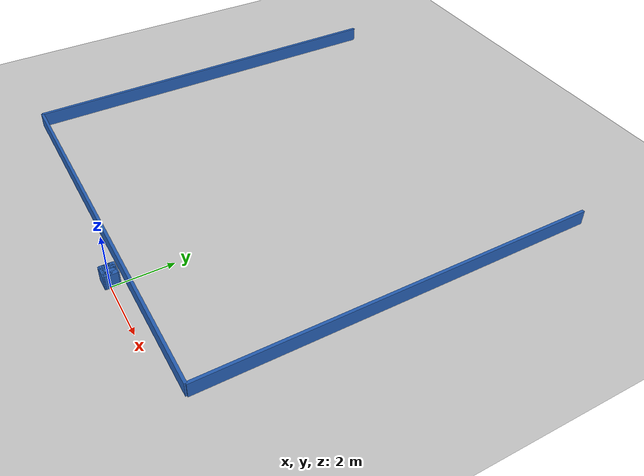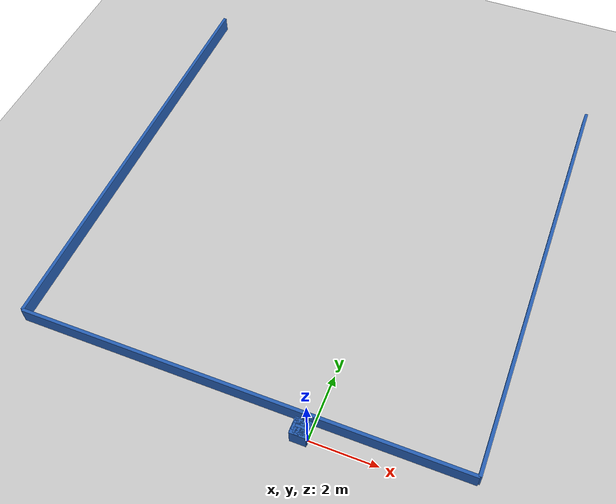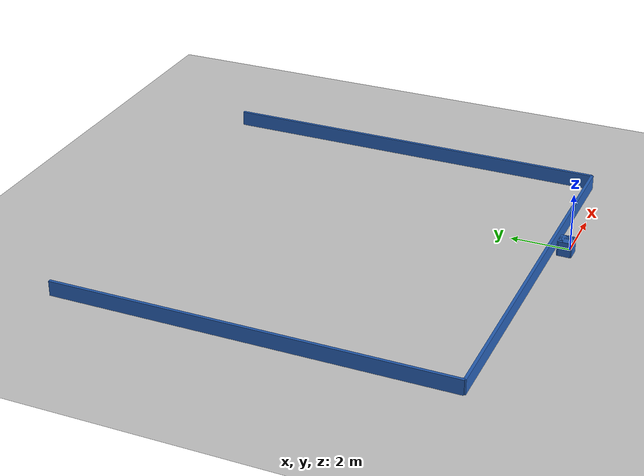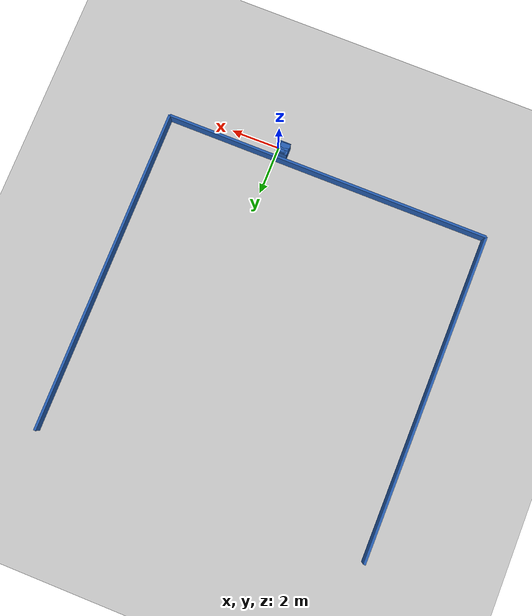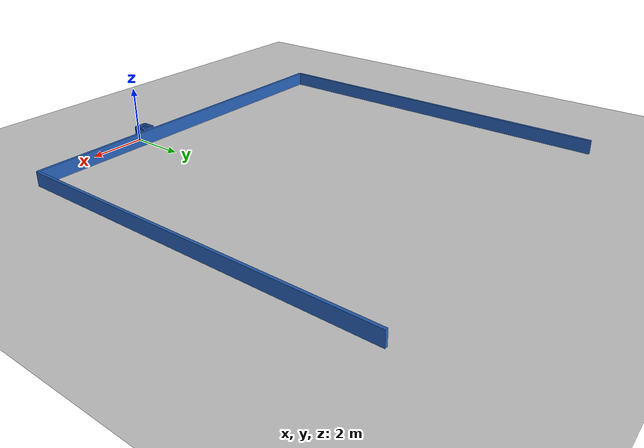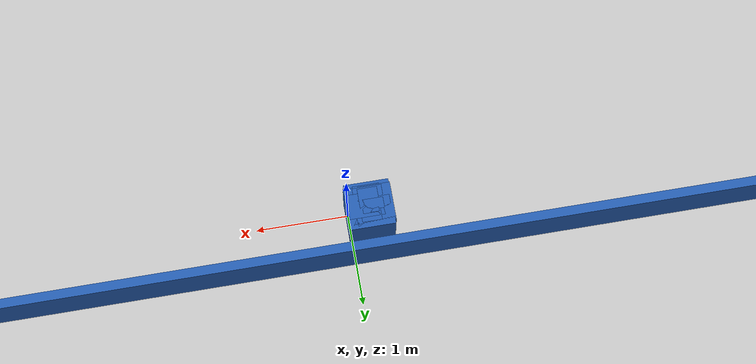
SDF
<?xml version="1.0" ?>
    <sdf version="1.5">
      <world name="default">
        <!-- A global light source -->
        <include>
          <uri>model://sun</uri>
        </include>
        <!-- A ground plane -->
        <include>
          <uri>model://ground_plane</uri>
        </include>

    <model name='libopen_space_final_T2B_67_46'>
      <static>1</static>
      <pose frame=''>-0.225000 0.075000 0.000000 0.000000 0.000000 0.000000</pose>
      <link name='link'>
        <inertial>
          <mass>1</mass>
          <inertia>
            <ixx>0.145833</ixx>
            <ixy>0</ixy>
            <ixz>0</ixz>
            <iyy>0.145833</iyy>
            <iyz>0</iyz>
            <izz>0.125</izz>
          </inertia>
        </inertial>
        <collision name='collision'>
          <geometry>
            <box>
              <size>0.16 0.19 1</size>
            </box>
          </geometry>
          <max_contacts>10</max_contacts>
          <surface>
            <contact>
              <ode/>
            </contact>
            <bounce/>
            <friction>
              <torsional>
                <ode/>
              </torsional>
              <ode/>
            </friction>
          </surface>
        </collision>
        <visual name='visual'>
          <geometry>
            <box>
              <size>0.16 0.19 1</size>
            </box>
          </geometry>
	    <material>
              <ambient>0.152000 0.379000 0.720000 1</ambient>
	      <diffuse>0.152000 0.379000 0.720000 1</diffuse>
          </material>
          <material>
            <script>
              <name>Gazebo/Grey</name>
              <uri>file://media/materials/scripts/gazebo.material</uri>
            </script>
          </material>
        </visual>
        <self_collide>0</self_collide>
        <kinematic>0</kinematic>
        <gravity>1</gravity>
      </link>
      <plugin name='libopen_space_final_T2B_67_46' filename='libopen_space_final_T2B_67_46.so'/>
    </model>

    <model name='libopen_space_final_T2B_126_41'>
      <static>1</static>
      <pose frame=''>-0.225000 0.075000 0.000000 0.000000 0.000000 0.000000</pose>
      <link name='link'>
        <inertial>
          <mass>1</mass>
          <inertia>
            <ixx>0.145833</ixx>
            <ixy>0</ixy>
            <ixz>0</ixz>
            <iyy>0.145833</iyy>
            <iyz>0</iyz>
            <izz>0.125</izz>
          </inertia>
        </inertial>
        <collision name='collision'>
          <geometry>
            <box>
              <size>0.21 0.37 1</size>
            </box>
          </geometry>
          <max_contacts>10</max_contacts>
          <surface>
            <contact>
              <ode/>
            </contact>
            <bounce/>
            <friction>
              <torsional>
                <ode/>
              </torsional>
              <ode/>
            </friction>
          </surface>
        </collision>
        <visual name='visual'>
          <geometry>
            <box>
              <size>0.21 0.37 1</size>
            </box>
          </geometry>
	    <material>
              <ambient>0.152000 0.379000 0.720000 1</ambient>
	      <diffuse>0.152000 0.379000 0.720000 1</diffuse>
          </material>
          <material>
            <script>
              <name>Gazebo/Grey</name>
              <uri>file://media/materials/scripts/gazebo.material</uri>
            </script>
          </material>
        </visual>
        <self_collide>0</self_collide>
        <kinematic>0</kinematic>
        <gravity>1</gravity>
      </link>
      <plugin name='libopen_space_final_T2B_126_41' filename='libopen_space_final_T2B_126_41.so'/>
    </model>

    <model name='libopen_space_final_T2B_113_82'>
      <static>1</static>
      <pose frame=''>-0.225000 0.075000 0.000000 0.000000 0.000000 0.000000</pose>
      <link name='link'>
        <inertial>
          <mass>1</mass>
          <inertia>
            <ixx>0.145833</ixx>
            <ixy>0</ixy>
            <ixz>0</ixz>
            <iyy>0.145833</iyy>
            <iyz>0</iyz>
            <izz>0.125</izz>
          </inertia>
        </inertial>
        <collision name='collision'>
          <geometry>
            <box>
              <size>0.44 0.15 1</size>
            </box>
          </geometry>
          <max_contacts>10</max_contacts>
          <surface>
            <contact>
              <ode/>
            </contact>
            <bounce/>
            <friction>
              <torsional>
                <ode/>
              </torsional>
              <ode/>
            </friction>
          </surface>
        </collision>
        <visual name='visual'>
          <geometry>
            <box>
              <size>0.44 0.15 1</size>
            </box>
          </geometry>
	    <material>
              <ambient>0.152000 0.379000 0.720000 1</ambient>
	      <diffuse>0.152000 0.379000 0.720000 1</diffuse>
          </material>
          <material>
            <script>
              <name>Gazebo/Grey</name>
              <uri>file://media/materials/scripts/gazebo.material</uri>
            </script>
          </material>
        </visual>
        <self_collide>0</self_collide>
        <kinematic>0</kinematic>
        <gravity>1</gravity>
      </link>
      <plugin name='libopen_space_final_T2B_113_82' filename='libopen_space_final_T2B_113_82.so'/>
    </model>

    <model name='libopen_space_final_T2B_71_69'>
      <static>1</static>
      <pose frame=''>-0.225000 0.075000 0.000000 0.000000 0.000000 0.000000</pose>
      <link name='link'>
        <inertial>
          <mass>1</mass>
          <inertia>
            <ixx>0.145833</ixx>
            <ixy>0</ixy>
            <ixz>0</ixz>
            <iyy>0.145833</iyy>
            <iyz>0</iyz>
            <izz>0.125</izz>
          </inertia>
        </inertial>
        <collision name='collision'>
          <geometry>
            <box>
              <size>0.50 0.42 1</size>
            </box>
          </geometry>
          <max_contacts>10</max_contacts>
          <surface>
            <contact>
              <ode/>
            </contact>
            <bounce/>
            <friction>
              <torsional>
                <ode/>
              </torsional>
              <ode/>
            </friction>
          </surface>
        </collision>
        <visual name='visual'>
          <geometry>
            <box>
              <size>0.50 0.42 1</size>
            </box>
          </geometry>
	    <material>
              <ambient>0.152000 0.379000 0.720000 1</ambient>
	      <diffuse>0.152000 0.379000 0.720000 1</diffuse>
          </material>
          <material>
            <script>
              <name>Gazebo/Grey</name>
              <uri>file://media/materials/scripts/gazebo.material</uri>
            </script>
          </material>
        </visual>
        <self_collide>0</self_collide>
        <kinematic>0</kinematic>
        <gravity>1</gravity>
      </link>
      <plugin name='libopen_space_final_T2B_71_69' filename='libopen_space_final_T2B_71_69.so'/>
    </model>

    <model name='libopen_space_final_T2B_80_26'>
      <static>1</static>
      <pose frame=''>-0.225000 0.075000 0.000000 0.000000 0.000000 0.000000</pose>
      <link name='link'>
        <inertial>
          <mass>1</mass>
          <inertia>
            <ixx>0.145833</ixx>
            <ixy>0</ixy>
            <ixz>0</ixz>
            <iyy>0.145833</iyy>
            <iyz>0</iyz>
            <izz>0.125</izz>
          </inertia>
        </inertial>
        <collision name='collision'>
          <geometry>
            <box>
              <size>0.22 0.48 1</size>
            </box>
          </geometry>
          <max_contacts>10</max_contacts>
          <surface>
            <contact>
              <ode/>
            </contact>
            <bounce/>
            <friction>
              <torsional>
                <ode/>
              </torsional>
              <ode/>
            </friction>
          </surface>
        </collision>
        <visual name='visual'>
          <geometry>
            <box>
              <size>0.22 0.48 1</size>
            </box>
          </geometry>
	    <material>
              <ambient>0.152000 0.379000 0.720000 1</ambient>
	      <diffuse>0.152000 0.379000 0.720000 1</diffuse>
          </material>
          <material>
            <script>
              <name>Gazebo/Grey</name>
              <uri>file://media/materials/scripts/gazebo.material</uri>
            </script>
          </material>
        </visual>
        <self_collide>0</self_collide>
        <kinematic>0</kinematic>
        <gravity>1</gravity>
      </link>
      <plugin name='libopen_space_final_T2B_80_26' filename='libopen_space_final_T2B_80_26.so'/>
    </model>

    <model name='libopen_space_final_T2B_90_95'>
      <static>1</static>
      <pose frame=''>-0.225000 0.075000 0.000000 0.000000 0.000000 0.000000</pose>
      <link name='link'>
        <inertial>
          <mass>1</mass>
          <inertia>
            <ixx>0.145833</ixx>
            <ixy>0</ixy>
            <ixz>0</ixz>
            <iyy>0.145833</iyy>
            <iyz>0</iyz>
            <izz>0.125</izz>
          </inertia>
        </inertial>
        <collision name='collision'>
          <geometry>
            <box>
              <size>0.30 0.44 1</size>
            </box>
          </geometry>
          <max_contacts>10</max_contacts>
          <surface>
            <contact>
              <ode/>
            </contact>
            <bounce/>
            <friction>
              <torsional>
                <ode/>
              </torsional>
              <ode/>
            </friction>
          </surface>
        </collision>
        <visual name='visual'>
          <geometry>
            <box>
              <size>0.30 0.44 1</size>
            </box>
          </geometry>
	    <material>
              <ambient>0.152000 0.379000 0.720000 1</ambient>
	      <diffuse>0.152000 0.379000 0.720000 1</diffuse>
          </material>
          <material>
            <script>
              <name>Gazebo/Grey</name>
              <uri>file://media/materials/scripts/gazebo.material</uri>
            </script>
          </material>
        </visual>
        <self_collide>0</self_collide>
        <kinematic>0</kinematic>
        <gravity>1</gravity>
      </link>
      <plugin name='libopen_space_final_T2B_90_95' filename='libopen_space_final_T2B_90_95.so'/>
    </model>

    <model name='libopen_space_final_T2B_85_42'>
      <static>1</static>
      <pose frame=''>-0.225000 0.075000 0.000000 0.000000 0.000000 0.000000</pose>
      <link name='link'>
        <inertial>
          <mass>1</mass>
          <inertia>
            <ixx>0.145833</ixx>
            <ixy>0</ixy>
            <ixz>0</ixz>
            <iyy>0.145833</iyy>
            <iyz>0</iyz>
            <izz>0.125</izz>
          </inertia>
        </inertial>
        <collision name='collision'>
          <geometry>
            <box>
              <size>0.30 0.27 1</size>
            </box>
          </geometry>
          <max_contacts>10</max_contacts>
          <surface>
            <contact>
              <ode/>
            </contact>
            <bounce/>
            <friction>
              <torsional>
                <ode/>
              </torsional>
              <ode/>
            </friction>
          </surface>
        </collision>
        <visual name='visual'>
          <geometry>
            <box>
              <size>0.30 0.27 1</size>
            </box>
          </geometry>
	    <material>
              <ambient>0.152000 0.379000 0.720000 1</ambient>
	      <diffuse>0.152000 0.379000 0.720000 1</diffuse>
          </material>
          <material>
            <script>
              <name>Gazebo/Grey</name>
              <uri>file://media/materials/scripts/gazebo.material</uri>
            </script>
          </material>
        </visual>
        <self_collide>0</self_collide>
        <kinematic>0</kinematic>
        <gravity>1</gravity>
      </link>
      <plugin name='libopen_space_final_T2B_85_42' filename='libopen_space_final_T2B_85_42.so'/>
    </model>

    <model name='libopen_space_final_T2B_79_14'>
      <static>1</static>
      <pose frame=''>-0.225000 0.075000 0.000000 0.000000 0.000000 0.000000</pose>
      <link name='link'>
        <inertial>
          <mass>1</mass>
          <inertia>
            <ixx>0.145833</ixx>
            <ixy>0</ixy>
            <ixz>0</ixz>
            <iyy>0.145833</iyy>
            <iyz>0</iyz>
            <izz>0.125</izz>
          </inertia>
        </inertial>
        <collision name='collision'>
          <geometry>
            <box>
              <size>0.18 0.18 1</size>
            </box>
          </geometry>
          <max_contacts>10</max_contacts>
          <surface>
            <contact>
              <ode/>
            </contact>
            <bounce/>
            <friction>
              <torsional>
                <ode/>
              </torsional>
              <ode/>
            </friction>
          </surface>
        </collision>
        <visual name='visual'>
          <geometry>
            <box>
              <size>0.18 0.18 1</size>
            </box>
          </geometry>
	    <material>
              <ambient>0.152000 0.379000 0.720000 1</ambient>
	      <diffuse>0.152000 0.379000 0.720000 1</diffuse>
          </material>
          <material>
            <script>
              <name>Gazebo/Grey</name>
              <uri>file://media/materials/scripts/gazebo.material</uri>
            </script>
          </material>
        </visual>
        <self_collide>0</self_collide>
        <kinematic>0</kinematic>
        <gravity>1</gravity>
      </link>
      <plugin name='libopen_space_final_T2B_79_14' filename='libopen_space_final_T2B_79_14.so'/>
    </model>

    <model name='libopen_space_final_T2B_120_45'>
      <static>1</static>
      <pose frame=''>-0.225000 0.075000 0.000000 0.000000 0.000000 0.000000</pose>
      <link name='link'>
        <inertial>
          <mass>1</mass>
          <inertia>
            <ixx>0.145833</ixx>
            <ixy>0</ixy>
            <ixz>0</ixz>
            <iyy>0.145833</iyy>
            <iyz>0</iyz>
            <izz>0.125</izz>
          </inertia>
        </inertial>
        <collision name='collision'>
          <geometry>
            <box>
              <size>0.31 0.40 1</size>
            </box>
          </geometry>
          <max_contacts>10</max_contacts>
          <surface>
            <contact>
              <ode/>
            </contact>
            <bounce/>
            <friction>
              <torsional>
                <ode/>
              </torsional>
              <ode/>
            </friction>
          </surface>
        </collision>
        <visual name='visual'>
          <geometry>
            <box>
              <size>0.31 0.40 1</size>
            </box>
          </geometry>
	    <material>
              <ambient>0.152000 0.379000 0.720000 1</ambient>
	      <diffuse>0.152000 0.379000 0.720000 1</diffuse>
          </material>
          <material>
            <script>
              <name>Gazebo/Grey</name>
              <uri>file://media/materials/scripts/gazebo.material</uri>
            </script>
          </material>
        </visual>
        <self_collide>0</self_collide>
        <kinematic>0</kinematic>
        <gravity>1</gravity>
      </link>
      <plugin name='libopen_space_final_T2B_120_45' filename='libopen_space_final_T2B_120_45.so'/>
    </model>

    <model name='libopen_space_final_T2B_73_39'>
      <static>1</static>
      <pose frame=''>-0.225000 0.075000 0.000000 0.000000 0.000000 0.000000</pose>
      <link name='link'>
        <inertial>
          <mass>1</mass>
          <inertia>
            <ixx>0.145833</ixx>
            <ixy>0</ixy>
            <ixz>0</ixz>
            <iyy>0.145833</iyy>
            <iyz>0</iyz>
            <izz>0.125</izz>
          </inertia>
        </inertial>
        <collision name='collision'>
          <geometry>
            <box>
              <size>0.48 0.50 1</size>
            </box>
          </geometry>
          <max_contacts>10</max_contacts>
          <surface>
            <contact>
              <ode/>
            </contact>
            <bounce/>
            <friction>
              <torsional>
                <ode/>
              </torsional>
              <ode/>
            </friction>
          </surface>
        </collision>
        <visual name='visual'>
          <geometry>
            <box>
              <size>0.48 0.50 1</size>
            </box>
          </geometry>
	    <material>
              <ambient>0.152000 0.379000 0.720000 1</ambient>
	      <diffuse>0.152000 0.379000 0.720000 1</diffuse>
          </material>
          <material>
            <script>
              <name>Gazebo/Grey</name>
              <uri>file://media/materials/scripts/gazebo.material</uri>
            </script>
          </material>
        </visual>
        <self_collide>0</self_collide>
        <kinematic>0</kinematic>
        <gravity>1</gravity>
      </link>
      <plugin name='libopen_space_final_T2B_73_39' filename='libopen_space_final_T2B_73_39.so'/>
    </model>

    <model name='libopen_space_final_T2B_119_99'>
      <static>1</static>
      <pose frame=''>-0.225000 0.075000 0.000000 0.000000 0.000000 0.000000</pose>
      <link name='link'>
        <inertial>
          <mass>1</mass>
          <inertia>
            <ixx>0.145833</ixx>
            <ixy>0</ixy>
            <ixz>0</ixz>
            <iyy>0.145833</iyy>
            <iyz>0</iyz>
            <izz>0.125</izz>
          </inertia>
        </inertial>
        <collision name='collision'>
          <geometry>
            <box>
              <size>0.30 0.12 1</size>
            </box>
          </geometry>
          <max_contacts>10</max_contacts>
          <surface>
            <contact>
              <ode/>
            </contact>
            <bounce/>
            <friction>
              <torsional>
                <ode/>
              </torsional>
              <ode/>
            </friction>
          </surface>
        </collision>
        <visual name='visual'>
          <geometry>
            <box>
              <size>0.30 0.12 1</size>
            </box>
          </geometry>
	    <material>
              <ambient>0.152000 0.379000 0.720000 1</ambient>
	      <diffuse>0.152000 0.379000 0.720000 1</diffuse>
          </material>
          <material>
            <script>
              <name>Gazebo/Grey</name>
              <uri>file://media/materials/scripts/gazebo.material</uri>
            </script>
          </material>
        </visual>
        <self_collide>0</self_collide>
        <kinematic>0</kinematic>
        <gravity>1</gravity>
      </link>
      <plugin name='libopen_space_final_T2B_119_99' filename='libopen_space_final_T2B_119_99.so'/>
    </model>

    <model name='libopen_space_final_T2B_147_27'>
      <static>1</static>
      <pose frame=''>-0.225000 0.075000 0.000000 0.000000 0.000000 0.000000</pose>
      <link name='link'>
        <inertial>
          <mass>1</mass>
          <inertia>
            <ixx>0.145833</ixx>
            <ixy>0</ixy>
            <ixz>0</ixz>
            <iyy>0.145833</iyy>
            <iyz>0</iyz>
            <izz>0.125</izz>
          </inertia>
        </inertial>
        <collision name='collision'>
          <geometry>
            <box>
              <size>0.14 0.11 1</size>
            </box>
          </geometry>
          <max_contacts>10</max_contacts>
          <surface>
            <contact>
              <ode/>
            </contact>
            <bounce/>
            <friction>
              <torsional>
                <ode/>
              </torsional>
              <ode/>
            </friction>
          </surface>
        </collision>
        <visual name='visual'>
          <geometry>
            <box>
              <size>0.14 0.11 1</size>
            </box>
          </geometry>
	    <material>
              <ambient>0.152000 0.379000 0.720000 1</ambient>
	      <diffuse>0.152000 0.379000 0.720000 1</diffuse>
          </material>
          <material>
            <script>
              <name>Gazebo/Grey</name>
              <uri>file://media/materials/scripts/gazebo.material</uri>
            </script>
          </material>
        </visual>
        <self_collide>0</self_collide>
        <kinematic>0</kinematic>
        <gravity>1</gravity>
      </link>
      <plugin name='libopen_space_final_T2B_147_27' filename='libopen_space_final_T2B_147_27.so'/>
    </model>

    <model name='libopen_space_final_T2B_106_71'>
      <static>1</static>
      <pose frame=''>-0.225000 0.075000 0.000000 0.000000 0.000000 0.000000</pose>
      <link name='link'>
        <inertial>
          <mass>1</mass>
          <inertia>
            <ixx>0.145833</ixx>
            <ixy>0</ixy>
            <ixz>0</ixz>
            <iyy>0.145833</iyy>
            <iyz>0</iyz>
            <izz>0.125</izz>
          </inertia>
        </inertial>
        <collision name='collision'>
          <geometry>
            <box>
              <size>0.46 0.27 1</size>
            </box>
          </geometry>
          <max_contacts>10</max_contacts>
          <surface>
            <contact>
              <ode/>
            </contact>
            <bounce/>
            <friction>
              <torsional>
                <ode/>
              </torsional>
              <ode/>
            </friction>
          </surface>
        </collision>
        <visual name='visual'>
          <geometry>
            <box>
              <size>0.46 0.27 1</size>
            </box>
          </geometry>
	    <material>
              <ambient>0.152000 0.379000 0.720000 1</ambient>
	      <diffuse>0.152000 0.379000 0.720000 1</diffuse>
          </material>
          <material>
            <script>
              <name>Gazebo/Grey</name>
              <uri>file://media/materials/scripts/gazebo.material</uri>
            </script>
          </material>
        </visual>
        <self_collide>0</self_collide>
        <kinematic>0</kinematic>
        <gravity>1</gravity>
      </link>
      <plugin name='libopen_space_final_T2B_106_71' filename='libopen_space_final_T2B_106_71.so'/>
    </model>

        <model name='bottom_wall'>
          <static>1</static>
          <pose frame=''>-2.25 0.5 0.000000 0.000000 0.000000 1.57079632</pose>
          <link name='link'>
            <inertial>
            <mass>1</mass>
            <inertia>
              <ixx>0.145833</ixx>
              <ixy>0</ixy>
              <ixz>0</ixz>
              <iyy>0.145833</iyy>
              <iyz>0</iyz>
              <izz>0.125</izz>
            </inertia>
            </inertial>
            <collision name='collision'>
            <geometry>
              <box>
              <size>0.1 13.5 1</size>
              </box>
            </geometry>
            <max_contacts>10</max_contacts>
            <surface>
              <contact>
              <ode/>
              </contact>
              <bounce/>
              <friction>
              <torsional>
                <ode/>
              </torsional>
              <ode/>
              </friction>
            </surface>
            </collision>
            <visual name='visual'>
            <geometry>
              <box>
              <size>0.1 13.5 1</size>
              </box>
            </geometry>
            <material>
              <ambient>0.152000 0.379000 0.720000 1</ambient>
            <diffuse>0.152000 0.379000 0.720000 1</diffuse>
            </material>
            <material>
              <script>
              <name>Gazebo/Grey</name>
              <uri>file://media/materials/scripts/gazebo.material</uri>
              </script>
            </material>
            </visual>
            <self_collide>0</self_collide>
            <kinematic>0</kinematic>
            <gravity>1</gravity>
          </link>
        </model>

        <model name='left_wall'>
          <static>1</static>
          <pose frame=''>-9 7.25 0.000000 0.000000 0.000000 0.000000</pose>
          <link name='link'>
            <inertial>
            <mass>1</mass>
            <inertia>
              <ixx>0.145833</ixx>
              <ixy>0</ixy>
              <ixz>0</ixz>
              <iyy>0.145833</iyy>
              <iyz>0</iyz>
              <izz>0.125</izz>
            </inertia>
            </inertial>
            <collision name='collision'>
            <geometry>
              <box>
              <size>0.1 13.5 1</size>
              </box>
            </geometry>
            <max_contacts>10</max_contacts>
            <surface>
              <contact>
              <ode/>
              </contact>
              <bounce/>
              <friction>
              <torsional>
                <ode/>
              </torsional>
              <ode/>
              </friction>
            </surface>
            </collision>
            <visual name='visual'>
            <geometry>
              <box>
              <size>0.1 13.5 1</size>
              </box>
            </geometry>
            <material>
              <ambient>0.152000 0.379000 0.720000 1</ambient>
            <diffuse>0.152000 0.379000 0.720000 1</diffuse>
            </material>
            <material>
              <script>
              <name>Gazebo/Grey</name>
              <uri>file://media/materials/scripts/gazebo.material</uri>
              </script>
            </material>
            </visual>
            <self_collide>0</self_collide>
            <kinematic>0</kinematic>
            <gravity>1</gravity>
          </link>
        </model>

        <model name='right_wall'>
          <static>1</static>
          <pose frame=''>4.5 7.25 0.000000 0.000000 0.000000 0.000000</pose>
          <link name='link'>
            <inertial>
            <mass>1</mass>
            <inertia>
              <ixx>0.145833</ixx>
              <ixy>0</ixy>
              <ixz>0</ixz>
              <iyy>0.145833</iyy>
              <iyz>0</iyz>
              <izz>0.125</izz>
            </inertia>
            </inertial>
            <collision name='collision'>
            <geometry>
              <box>
              <size>0.1 13.5 1</size>
              </box>
            </geometry>
            <max_contacts>10</max_contacts>
            <surface>
              <contact>
              <ode/>
              </contact>
              <bounce/>
              <friction>
              <torsional>
                <ode/>
              </torsional>
              <ode/>
              </friction>
            </surface>
            </collision>
            <visual name='visual'>
            <geometry>
              <box>
              <size>0.1 13.5 1</size>
              </box>
            </geometry>
            <material>
              <ambient>0.152000 0.379000 0.720000 1</ambient>
            <diffuse>0.152000 0.379000 0.720000 1</diffuse>
            </material>
            <material>
              <script>
              <name>Gazebo/Grey</name>
              <uri>file://media/materials/scripts/gazebo.material</uri>
              </script>
            </material>
            </visual>
            <self_collide>0</self_collide>
            <kinematic>0</kinematic>
            <gravity>1</gravity>
          </link>
        </model>

      </world>
    </sdf>"
